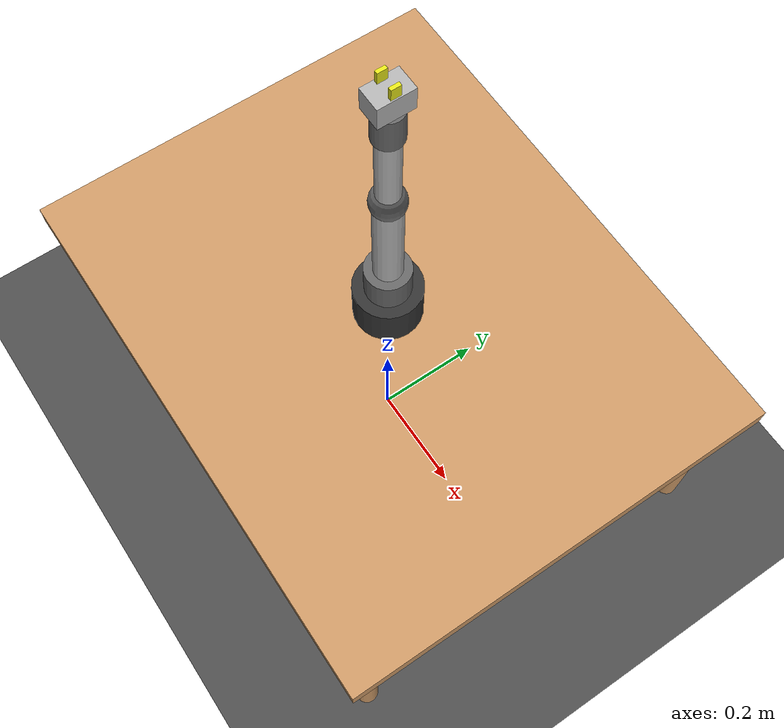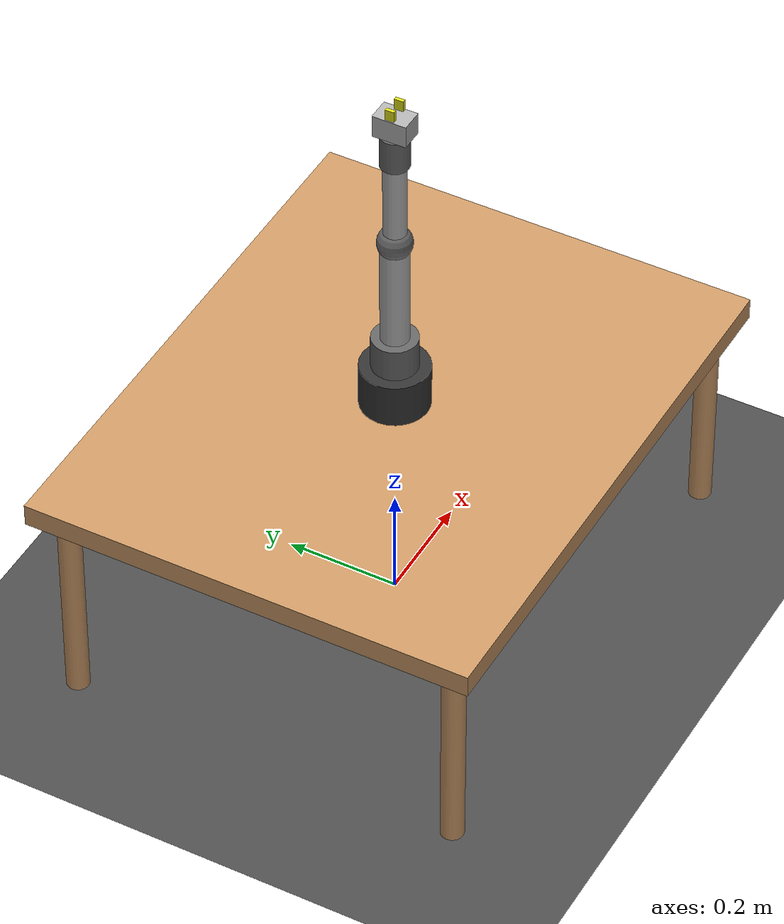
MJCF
<!--
Improved SO100 Scene - Better visual representation
-->

<mujoco model="so100_improved">
  <compiler angle="radian" autolimits="true"/>

  <option cone="elliptic" impratio="10"/>

  <asset>
    <material name="table_material" rgba="0.8 0.6 0.4 1.0"/>
    <material name="floor_material" rgba="0.3 0.3 0.3 1.0"/>
    <material name="so100_base" rgba="0.2 0.2 0.2 1.0"/>
    <material name="so100_arm" rgba="0.7 0.7 0.7 1.0"/>
    <material name="so100_joint" rgba="0.4 0.4 0.4 1.0"/>
    <material name="gripper_material" rgba="0.9 0.9 0.1 1.0"/>
  </asset>

  <default>
    <default class="so100">
      <joint axis="0 0 1" actuatorfrcrange="-50 50"/>
      <site group="4"/>
      <default class="visual">
        <geom contype="0" conaffinity="0" density="0" group="2"/>
      </default>
      <default class="collision">
        <geom group="3"/>
      </default>
    </default>
  </default>

  <visual>
    <headlight ambient="0.4 0.4 0.4" diffuse="0.8 0.8 0.8" specular="0.1 0.1 0.1"/>
    <rgba haze="0.15 0.25 0.35 1"/>
    <global offwidth="640" offheight="480"/>
  </visual>

  <worldbody>
    <!-- Lighting -->
    <light name="top_light" pos="0 0 2" dir="0 0 -1" diffuse="0.8 0.8 0.8" ambient="0.2 0.2 0.2"/>
    <light name="side_light1" pos="1 1 1.5" dir="-1 -1 -1" diffuse="0.4 0.4 0.4"/>
    <light name="side_light2" pos="-1 1 1.5" dir="1 -1 -1" diffuse="0.4 0.4 0.4"/>

    <!-- Floor -->
    <geom name="floor" type="plane" size="3 3 0.1" material="floor_material" friction="1 0.005 0.0001"/>

    <!-- Table -->
    <body name="table" pos="0 0 0.4">
      <geom name="table_top" type="box" size="0.5 0.4 0.02" pos="0 0 0" material="table_material"/>
      <!-- Table legs -->
      <geom name="leg1" type="cylinder" size="0.02 0.2" pos="0.45 0.35 -0.2" material="table_material"/>
      <geom name="leg2" type="cylinder" size="0.02 0.2" pos="0.45 -0.35 -0.2" material="table_material"/>
      <geom name="leg3" type="cylinder" size="0.02 0.2" pos="-0.45 0.35 -0.2" material="table_material"/>
      <geom name="leg4" type="cylinder" size="0.02 0.2" pos="-0.45 -0.35 -0.2" material="table_material"/>
    </body>

    <!-- Cameras -->
    <camera name="overhead_cam" pos="0 0 1.5" xyaxes="1 0 0 0 1 0" fovy="45"/>
    <camera name="worms_eye_cam" pos="0 0 0.1" xyaxes="1 0 0 0 0 1" fovy="45"/>
    <camera name="side_cam" pos="1.2 0.8 0.8" xyaxes="-0.8 0.6 0 -0.36 -0.48 0.8" fovy="45"/>

    <!-- Improved SO100 ARM - Using better geometric shapes -->
    <body name="so100/base_link" childclass="so100" pos="0 0 0.42">
      <inertial pos="0 0 0.05" mass="2.0" diaginertia="0.01 0.01 0.01"/>
      <!-- Better base: cylinder instead of box -->
      <geom name="base_visual" class="visual" type="cylinder" size="0.06 0.04" pos="0 0 0.04" material="so100_base"/>
      <geom name="base_collision" class="collision" type="cylinder" size="0.06 0.04" pos="0 0 0.04"/>

      <body name="so100/shoulder_link" pos="0 0 0.08">
        <inertial pos="0 0 0.05" mass="1.5" diaginertia="0.005 0.005 0.005"/>
        <joint name="so100/rotation" axis="0 0 1" range="-3.14159 3.14159" damping="5.0" actuatorfrcrange="-50 50"/>
        <!-- Joint housing -->
        <geom name="shoulder_visual" class="visual" type="cylinder" size="0.04 0.03" pos="0 0 0.03" material="so100_joint"/>
        <geom name="shoulder_collision" class="collision" type="cylinder" size="0.04 0.03" pos="0 0 0.03"/>

        <body name="so100/upper_arm_link" pos="0 0 0.06">
          <inertial pos="0 0 0.1" mass="1.2" diaginertia="0.01 0.01 0.002"/>
          <joint name="so100/pitch" axis="0 1 0" range="-1.57 1.57" damping="10.0" actuatorfrcrange="-50 50"/>
          <!-- Upper arm: elongated capsule -->
          <geom name="upper_arm_visual" class="visual" type="capsule" size="0.025" fromto="0 0 0 0 0 0.2" material="so100_arm"/>
          <geom name="upper_arm_collision" class="collision" type="capsule" size="0.025" fromto="0 0 0 0 0 0.2"/>

          <body name="so100/forearm_link" pos="0 0 0.2">
            <inertial pos="0 0 0.08" mass="0.8" diaginertia="0.005 0.005 0.001"/>
            <joint name="so100/elbow" axis="0 1 0" range="-2.0 2.0" damping="8.0" actuatorfrcrange="-50 50"/>
            <!-- Elbow joint -->
            <geom name="elbow_joint" class="visual" type="sphere" size="0.03" pos="0 0 0" material="so100_joint"/>
            <!-- Forearm: smaller capsule -->
            <geom name="forearm_visual" class="visual" type="capsule" size="0.02" fromto="0 0 0 0 0 0.16" material="so100_arm"/>
            <geom name="forearm_collision" class="collision" type="capsule" size="0.02" fromto="0 0 0 0 0 0.16"/>

            <body name="so100/wrist_link" pos="0 0 0.16">
              <inertial pos="0 0 0.03" mass="0.4" diaginertia="0.001 0.001 0.001"/>
              <joint name="so100/wrist_pitch" axis="0 1 0" range="-1.57 1.57" damping="5.0" actuatorfrcrange="-50 50"/>
              <!-- Wrist assembly -->
              <geom name="wrist_visual" class="visual" type="cylinder" size="0.025 0.03" pos="0 0 0.03" material="so100_joint"/>
              <geom name="wrist_collision" class="collision" type="cylinder" size="0.025 0.03" pos="0 0 0.03"/>

              <body name="so100/hand_link" pos="0 0 0.06">
                <inertial pos="0 0 0.02" mass="0.2" diaginertia="0.0005 0.0005 0.0005"/>
                <joint name="so100/wrist_roll" axis="1 0 0" range="-3.14159 3.14159" damping="2.0" actuatorfrcrange="-50 50"/>
                <!-- Hand/gripper mount -->
                <geom name="hand_visual" class="visual" type="box" size="0.02 0.03 0.02" pos="0 0 0.02" material="so100_arm"/>
                <geom name="hand_collision" class="collision" type="box" size="0.02 0.03 0.02" pos="0 0 0.02"/>

                <site name="so100/gripper" pos="0 0 0.04" group="5"/>

                <!-- Improved gripper fingers -->
                <body name="so100/gripper_left" pos="0.015 0 0.04">
                  <inertial pos="0 0 0.015" mass="0.05" diaginertia="0.0001 0.0001 0.0001"/>
                  <joint name="so100/jaw_left" axis="-1 0 0" range="0 0.04" damping="1.0" actuatorfrcrange="-50 50"/>
                  <!-- Finger shape -->
                  <geom name="gripper_left_visual" class="visual" type="box" size="0.003 0.008 0.02" material="gripper_material"/>
                  <geom name="gripper_left_collision" class="collision" type="box" size="0.003 0.008 0.02"/>
                </body>

                <body name="so100/gripper_right" pos="-0.015 0 0.04">
                  <inertial pos="0 0 0.015" mass="0.05" diaginertia="0.0001 0.0001 0.0001"/>
                  <joint name="so100/jaw_right" axis="1 0 0" range="0 0.04" damping="1.0" actuatorfrcrange="-50 50"/>
                  <!-- Finger shape -->
                  <geom name="gripper_right_visual" class="visual" type="box" size="0.003 0.008 0.02" material="gripper_material"/>
                  <geom name="gripper_right_collision" class="collision" type="box" size="0.003 0.008 0.02"/>
                </body>
              </body>
            </body>
          </body>
        </body>
      </body>
    </body>
  </worldbody>

  <contact>
    <exclude body1="so100/base_link" body2="so100/shoulder_link"/>
  </contact>

  <equality>
    <joint joint1="so100/jaw_left" joint2="so100/jaw_right" polycoef="0 -1 0 0 0"/>
  </equality>

  <actuator>
    <position name="so100/rotation_actuator" joint="so100/rotation" ctrlrange="-3.14159 3.14159" kp="50"/>
    <position name="so100/pitch_actuator" joint="so100/pitch" ctrlrange="-1.57 1.57" kp="100"/>
    <position name="so100/elbow_actuator" joint="so100/elbow" ctrlrange="-2.0 2.0" kp="80"/>
    <position name="so100/wrist_pitch_actuator" joint="so100/wrist_pitch" ctrlrange="-1.57 1.57" kp="40"/>
    <position name="so100/wrist_roll_actuator" joint="so100/wrist_roll" ctrlrange="-3.14159 3.14159" kp="20"/>
    <position name="so100/jaw_actuator" joint="so100/jaw_left" ctrlrange="0 0.04" kp="100"/>
  </actuator>

  <keyframe>
    <key name="neutral_pose" qpos="0 -0.5 1.0 -0.5 0.0 0.02 0.02"/>
  </keyframe>
</mujoco>
